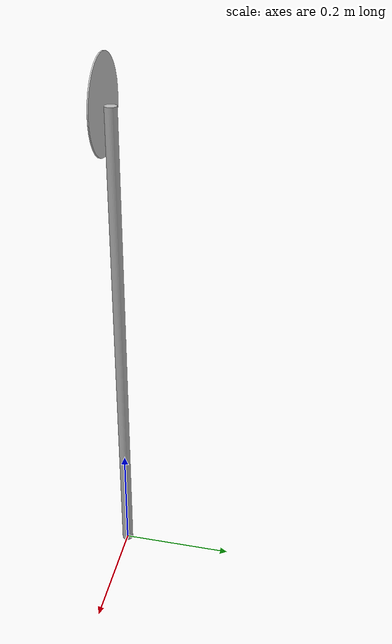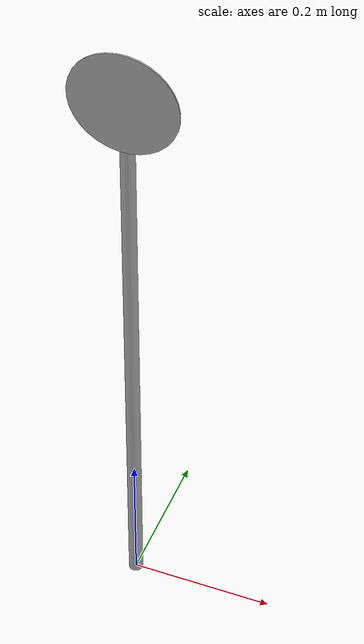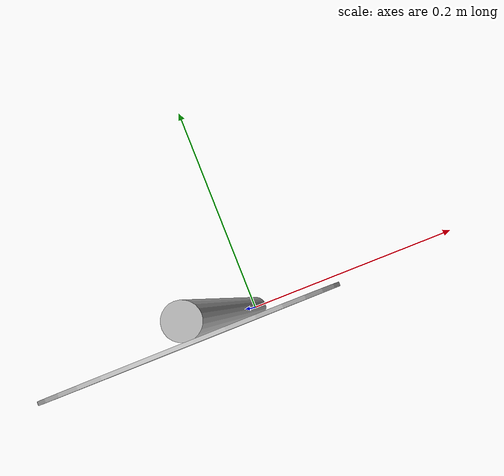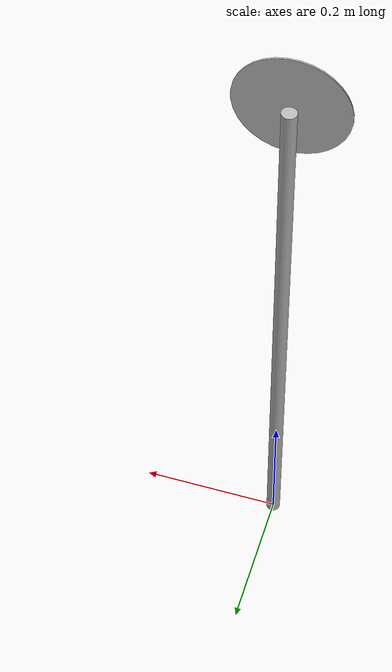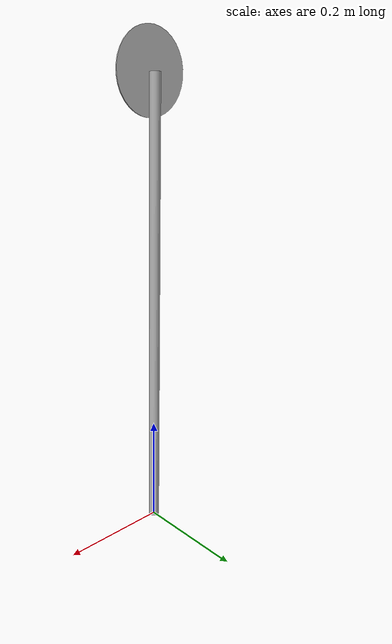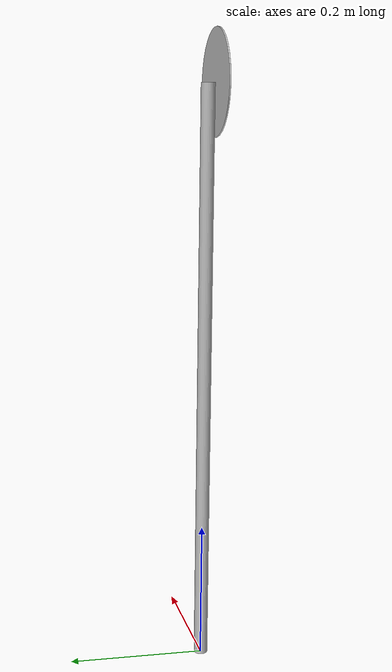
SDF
<?xml version="1.0"?>
<sdf version="1.0">
	<model name="sign">
		<link name="leg">
      		<pose>0 0 0.425 0 0 0</pose>
			<inertial>
				<mass>0.00693617</mass>
				<inertia>
					<ixx>0.00058102</ixx><ixy>0</ixy><ixz>0</ixz>
					<iyy>0.00058102</iyy><iyz>0</iyz>
					<izz>6.02e-06</izz>
				</inertia>
			</inertial>
			<gravity>0</gravity>
			<self_collide>0</self_collide>
			<kinematic>0</kinematic>
			<enable_wind>0</enable_wind>
			<visual name="visual">
				<geometry>
					<cylinder>
						<radius>0.01</radius>
						<length>0.85</length>
					</cylinder>
				</geometry>
				<material>
          			Gazebo/Grey
				</material>
			</visual>
			<collision name="collision">
				<geometry>
					<cylinder>
						<radius>0.01</radius>
						<length>0.85</length>
					</cylinder>
				</geometry>
			</collision>
		</link>
		<link name="head">
      		<pose>0 -0.011 0.85 1.5708 0 0</pose>
			<inertial>
				<mass>0.00693617</mass>
				<inertia>
					<ixx>0.00058102</ixx><ixy>0</ixy><ixz>0</ixz>
					<iyy>0.00058102</iyy><iyz>0</iyz>
					<izz>6.02e-06</izz>
				</inertia>
			</inertial>
			<gravity>0</gravity>
			<self_collide>0</self_collide>
			<kinematic>0</kinematic>
			<enable_wind>0</enable_wind>
			<visual name="visual">
				<geometry>
					<mesh>
            			<scale>1 1 1</scale>
						<uri>model://forward-right-sign/forward-right.dae</uri>
					</mesh>
				</geometry>
			</visual>
			<collision name="collision">
				<geometry>
					<cylinder>
						<radius>0.15</radius>
						<length>0.001</length>
					</cylinder>
				</geometry>
			</collision>
		</link>

		<static>
			1
		</static>
	</model>
</sdf>
